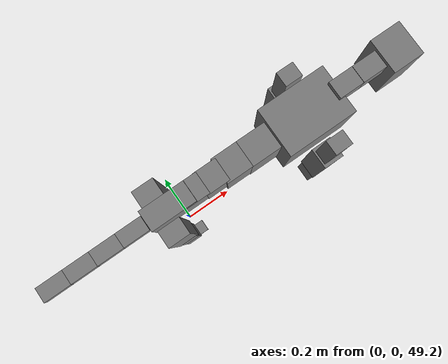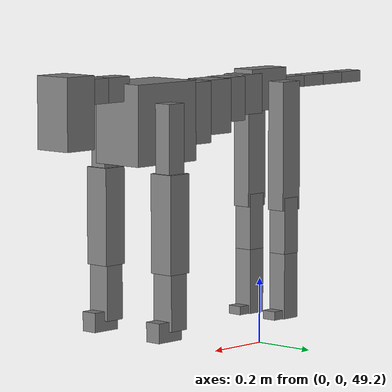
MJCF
<mujoco model="dog">

    <default>
        <joint armature="0.02" stiffness="1" damping="0.2" limited="true"/>
        <geom condim="3" friction="1 0.05 0.05" margin="0.01"/>
        <motor ctrllimited="true" ctrlrange="-1.0 1.0" forcelimited="true" gear="50"/>
    </default>

    <compiler inertiafromgeom="true" angle="radian"/>

    <option timestep="0.016" iterations="50" tolerance="1e-10" solver="Newton" jacobian="dense" cone="pyramidal"/>

    <size nconmax="20000" njmax="60000" nstack="5000000"/>
    <visual>
        <map force="0.1" zfar="30"/>
        <rgba haze="0.15 0.25 0.35 1"/>
        <quality shadowsize="2048"/>
        <global offwidth="800" offheight="800"/>
    </visual>

    <asset>
        <texture type="skybox" builtin="gradient" rgb1="0.3 0.5 0.7" rgb2="0 0 0" width="512" height="512"/>
        <texture name="texplane" type="2d" builtin="checker" rgb1=".2 .3 .4" rgb2=".1 0.15 0.2" width="512" height="512"
                 mark="cross" markrgb=".8 .8 .8"/>
        <texture name="texgeom" type="cube" builtin="flat" mark="cross" width="127" height="1278" rgb1="0.8 0.6 0.4"
                 rgb2="0.8 0.6 0.4" markrgb="1 1 1" random="0.01"/>

        <material name="matplane" reflectance="0.3" texture="texplane" texrepeat="1 1" texuniform="true"/>
        <material name="matgeom" texture="texgeom" texuniform="true" rgba="0.8 0.6 .4 1"/>
    </asset>

    <worldbody>
        <geom name="floor" pos="0 0 0" size="0 0 .25" type="plane" material="matplane" condim="3"/>

        <light directional="false" diffuse=".2 .2 .2" specular="0 0 0" pos="0 0 5" dir="0 0 -1" castshadow="false"/>
        <light mode="targetbodycom" target="torso" directional="false" diffuse=".8 .8 .8" specular="0.3 0.3 0.3"
               pos="0 0 4.0" dir="0 0 -1"/>

        <body name="root" pos="0 0 50">
            <freejoint name="root_1"/>
            <geom type="box" pos="0 0 -0.02" size="0.0774  0.0358  0.063" density="2030"/>

            <body name="spine1" pos="0.054 0 0">
                <joint name="spine1_y" axis="0 1 0" range="0 0.7" limited="true"/>
                <geom type="box" pos="0.02375 0 -0.03" size="0.04375  0.0375  0.05985" density="2030"/>

                <body name="spine2" pos="0.0612 0 0">
                    <joint name="spine2_y" axis="0 1 0" range="-0.15 0.15" limited="true"/>
                    <geom type="box" pos="0.03555  0  -0.04" size="0.04055  0.039  0.06615" density="2030"/>

                    <body name="spine3" pos="0.0730 0 0">
                        <joint name="spine3_y" axis="0 1 0" range="-0.15 0.15" limited="true"/>
                        <geom type="box" pos="0.03555  0  -0.057" size="0.04555  0.0445  0.081" density="2030"/>

                        <body name="spine4" pos="0.0780 0 0">
                            <joint name="spine4_y" axis="0 1 0" range="-0.15 0.15" limited="true"/>
                            <geom type="box" pos="0.05265  0  -0.07" size="0.05265  0.045  0.09135" density="2030"/>

                            <body name="torso" pos="0.1082 0 0">
                                <joint name="torso_y" axis="0 1 0" range="-0.15 0.15" limited="true"/>
                                <geom type="box" pos="0.11925  0  -0.085" size="0.11925  0.085  0.11745"
                                      density="2030"/>

                                <body name="neck1" pos="0.2160  0   0.0180">
                                    <joint name="neck1_y" axis="0 1 0" range="-1.2  -1" limited="true"/>
                                    <geom type="box" pos="0.0423  0  0" size="0.0423  0.03  0.036" density="2325"/>

                                    <body name="neck2" pos="0.0853  0  0">
                                        <joint name="neck2_y" axis="0 1 0" range="0.1  0" limited="true"/>
                                        <geom type="box" pos="0.0423  0  0" size="0.0423  0.03  0.036" density="2325"/>

                                        <body name="head" pos="0.0853  0  0">
                                            <joint name="head_y" axis="0 1 0" range="-0.3  -0.2" limited="true"/>
                                            <geom type="box" pos="0.0531  0  -0.055" size="0.0531  0.06  0.1044"
                                                  density="4030"/>

                                        </body>
                                    </body>
                                </body>

                                <body name="front_shoulder" pos="0.156  0   -0.0480">
                                    <joint name="front_shoulder_y" axis="0 1 0" range="-1 1.5" limited="true"/>
                                    <geom type="box" pos="0 0.13 -0.0874" size="0.0313  0.0267  0.1141" density="1158"/>
                                    <geom type="box" pos="0 -0.13 -0.0874" size="0.0313  0.0267  0.1141"
                                          density="1158"/>

                                    <body name="front_elbow" pos="0  0  -0.1748">
                                        <joint name="front_elbow_y" axis="0 1 0" range="-2 0" limited="true"/>
                                        <geom type="box" pos="0 0.13 -0.1437" size="0.0382  0.0390  0.1437"
                                              density="1081"/>
                                        <geom type="box" pos="0 -0.13 -0.1437" size="0.0382  0.0390  0.1437"
                                              density="1081"/>

                                        <body name="front_wrist" pos="0  0  -0.2875">
                                            <joint name="front_wrist_y" axis="0 1 0" range="-0.2 0" limited="true"/>
                                            <geom type="box" pos="0 0.13 -0.0754" size="0.0317  0.0352  0.0885"
                                                  density="1664"/>
                                            <geom type="box" pos="0 -0.13 -0.0754" size="0.0317  0.0352  0.0885"
                                                  density="1664"/>

                                            <body name="front_finger_end" pos="0  0  -0.1507">
                                                <joint name="front_finger_y" axis="0 1 0" range="-0.4 1"
                                                       limited="true"/>
                                                <geom type="box" pos="0.0254  0.13  -0.0139"
                                                      size="0.0466  0.0254  0.0289" density="1515"/>
                                                <geom type="box" pos="0.0254  -0.13  -0.0139"
                                                      size="0.0466  0.0254  0.0289" density="1515"/>

                                            </body>

                                        </body>
                                    </body>
                                </body>

                            </body>
                        </body>
                    </body>
                </body>
            </body>

            <body name="back_hip" pos="-0.03 0 -0.018">
                <joint name="back_hip_y" axis="0 1 0" range="-1.5 0.3" limited="true"/>
                <geom type="box" pos="0 0.07 -0.1721" size="0.0378  0.0296  0.1949" density="1154"/>
                <geom type="box" pos="0 -0.07 -0.1721" size="0.0378  0.0296  0.1949" density="1154"/>

                <body name="back_knee" pos="0  0  -0.3443">
                    <joint name="back_knee_y" axis="0 1 0" range="0 2.8" limited="true"/>
                    <geom type="box" pos="0 0.07 -0.0698" size="0.0304  0.0300  0.0854" density="1227"/>
                    <geom type="box" pos="0 -0.07 -0.0698" size="0.0304  0.0300  0.0854" density="1227"/>

                    <body name="back_ankle" pos="0  0  -0.1397">
                        <joint name="back_ankle_y" axis="0 1 0" range="-2.2 0" limited="true"/>
                        <geom type="box" pos="0 0.07 -0.1014" size="0.0297  0.0297  0.1127" density="1284"/>
                        <geom type="box" pos="0 -0.07 -0.1014" size="0.0297  0.0297  0.1127" density="1284"/>

                        <body name="back_toe_end" pos="0  0  -0.2029">
                            <joint name="back_toe_y" axis="0 1 0" range="-0.4 1" limited="true"/>
                            <geom type="box" pos="0.0236  0.07  0.0020" size="0.0433  0.0236  0.0130" density="1515"/>
                            <geom type="box" pos="0.0236  -0.07  0.0020" size="0.0433  0.0236  0.0130" density="1515"/>

                        </body>
                    </body>
                </body>
            </body>

            <body name="tail1" pos="-0.074 0 -0.006">
                <joint name="tail1_y" axis="0 1 0" range="-0.2 0.2" limited="true"/>
                <geom type="box" pos="-0.0536  0  0" size="0.045  0.025  0.0175" density="1587"/>

                <body name="tail2" pos="-0.09 0 0">
                    <joint name="tail2_y" axis="0 1 0" range="-0.2 0.2" limited="true"/>
                    <geom type="box" pos="-0.0536  0  0" size="0.045  0.025  0.0175" density="1587"/>

                    <body name="tail3" pos="-0.09 0 0">
                        <joint name="tail3_y" axis="0 1 0" range="-0.2 0.2" limited="true"/>
                        <geom type="box" pos="-0.0536  0  0" size="0.045  0.025  0.0175" density="1587"/>

                        <body name="tail4" pos="-0.09 0 0">
                            <joint name="tail4_y" axis="0 1 0" range="-0.2 0.2" limited="true"/>
                            <geom type="box" pos="-0.0536  0  0" size="0.045  0.025  0.0175" density="1587"/>

                        </body>
                    </body>
                </body>
            </body>
        </body>
    </worldbody>

    <actuator>
        <motor joint="spine1_y" forcerange="-150 150     "/>
        <motor joint="spine2_y" forcerange="-150 150     "/>
        <motor joint="spine3_y" forcerange="-150 150     "/>
        <motor joint="spine4_y" forcerange="-150 150     "/>
        <motor joint="torso_y" forcerange="-150 150     "/>
        <motor joint="neck1_y" forcerange="-100 100       "/>
        <motor joint="neck2_y" forcerange="-100 100       "/>
        <motor joint="head_y" forcerange="-150 150       "/>
        <motor joint="front_shoulder_y" forcerange="-116.52 161.77"/>
        <motor joint="front_elbow_y" forcerange="-194.28 189.62"/>
        <motor joint="front_wrist_y" forcerange="-141.12 140.40"/>
        <motor joint="front_finger_y" forcerange="-69.12 26.53"/>
        <motor joint="back_hip_y" forcerange="-258.15 336.72"/>
        <motor joint="back_knee_y" forcerange="-342.45 293.91"/>
        <motor joint="back_angle_y" forcerange="-180.57 193.84"/>
        <motor joint="back_toe_y" forcerange="-57.83 51.05"/>
        <motor joint="tail1_y" forcerange="-50 50     "/>
        <motor joint="tail2_y" forcerange="-50 50     "/>
        <motor joint="tail3_y" forcerange="-50 50     "/>
        <motor joint="tail4_y" forcerange="-50 50     "/>
    </actuator>
</mujoco>
